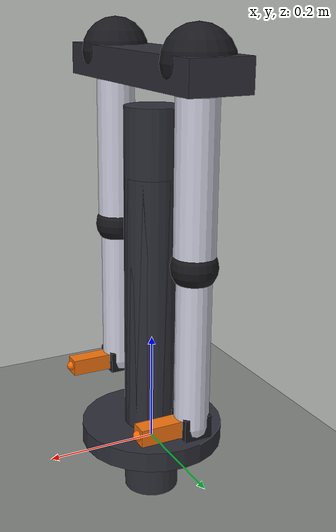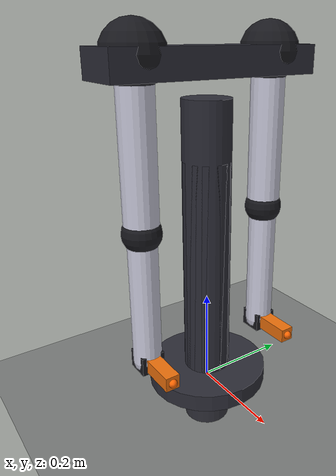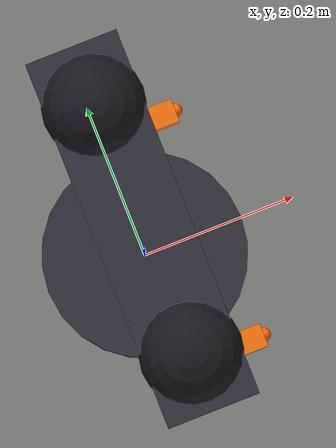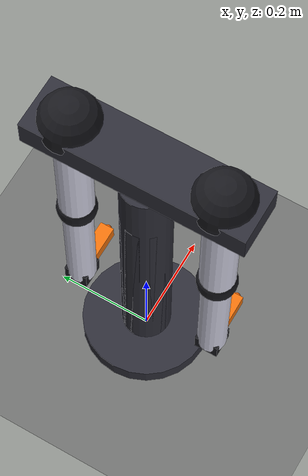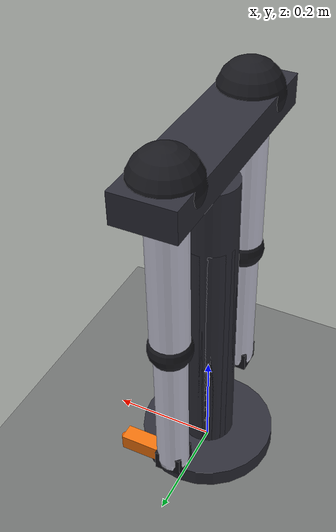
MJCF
<mujoco model="biasco_v2_bimanual_ros2">

  <compiler angle="degree" inertiafromgeom="true" />
  <option timestep="0.002" gravity="0 0 -9.81" />

  <default>
    <geom contype="0" conaffinity="0" />
    <joint limited="true" />
  </default>

  <asset>
    <material name="m_link" rgba="0.83 0.83 0.90 1.0" specular="0.65" shininess="0.45" reflectance="0.05" />
    <material name="m_joint" rgba="0.10 0.10 0.12 1.0" specular="0.85" shininess="0.70" />
    <material name="m_support" rgba="0.18 0.18 0.22 1.0" specular="0.55" shininess="0.35" reflectance="0.10" />
    <material name="m_ee" rgba="0.95 0.45 0.05 1.0" specular="0.50" shininess="0.30" />
    <material name="m_floor" rgba="0.20 0.20 0.22 1.0" specular="0.08" shininess="0.04" />
  </asset>

  <worldbody>
    <light name="key" directional="false" castshadow="true" pos="1.2 -1.0 3.5" dir="-0.5 0.4 -1" diffuse="0.85 0.85 0.82" specular="0.35 0.35 0.35" />
    <light name="fill" directional="true" castshadow="false" pos="-1.5 1.0 2.0" dir="0.6 -0.4 -0.8" diffuse="0.35 0.38 0.42" specular="0.05 0.05 0.05" />
    <light name="rim" directional="true" castshadow="false" pos="0 2.0 1.0" dir="0 -1 -0.3" diffuse="0.20 0.20 0.25" />

    <geom name="floor" type="plane" size="2 2 0.1" material="m_floor" contype="1" conaffinity="1" />

    <body name="base_link" pos="0 0 0">
      <geom name="base_plate" type="cylinder" size="0.13 0.018" pos="0 0 0.018" material="m_support" />
      <geom name="pole_lower" type="cylinder" size="0.05 0.30" pos="0 0 0.32" material="m_support" />

      <body name="trunk_link" pos="0 0 0.2">
        <joint name="trunk_rotate_joint" type="hinge" axis="0 0 1" range="-180 180" damping="20.0" frictionloss="2.0" armature="0.10" />
        <geom name="pole_upper" type="cylinder" size="0.05 0.30" pos="0 0 0" material="m_support" />
        <geom name="shoulder_yoke" type="box" size="0.055 0.22 0.028" pos="0 0 0.485" material="m_support" />

        <body name="l_shoulder_link" pos="0 0.15 0.5">
          <geom name="l_shoulder_housing" type="sphere" size="0.06" material="m_joint" />

          <body name="l_upper_arm_link" pos="0 0 0">
            <joint name="l_shoulder_abduct_joint" type="hinge" axis="1 0 0" range="-20 135" damping="12.0" frictionloss="1.5" armature="0.05" />
            <joint name="l_shoulder_flex_joint" type="hinge" axis="0 1 0" range="-60 150" damping="12.0" frictionloss="1.5" armature="0.05" />
            <joint name="l_shoulder_rot_joint" type="hinge" axis="0 0 1" range="-90 90" damping="8.0" frictionloss="1.0" armature="0.04" />
            <geom name="l_upper_arm" type="capsule" fromto="0 0 0  0 0 -0.32" size="0.035" material="m_link" />

            <body name="l_forearm_link" pos="0 0 -0.32">
              <joint name="l_elbow_flex_joint" type="hinge" axis="0 1 0" range="0 145" damping="6.0" frictionloss="0.8" armature="0.03" />
              <joint name="l_forearm_rot_joint" type="hinge" axis="0 0 1" range="-180 180" damping="4.0" frictionloss="0.5" armature="0.02" />
              <geom name="l_elbow_housing" type="sphere" size="0.04" material="m_joint" />
              <geom name="l_forearm" type="capsule" fromto="0 0 0  0 0 -0.28" size="0.03" material="m_link" />

              <body name="l_wrist_link" pos="0 0 -0.28">
                <joint name="l_wrist_flex_joint" type="hinge" axis="0 1 0" range="-90 90" damping="2.0" frictionloss="0.2" armature="0.01" />
                <geom name="l_wrist_housing" type="box" size="0.025 0.025 0.02" material="m_joint" />

                <body name="l_end_effector_link" pos="0 0 0">
                  <site name="l_ee_tip" type="sphere" size="0.009" pos="0.10 0 0" rgba="1.0 0.4 0.0 1" />
                  <geom name="l_ee_palm" type="box" size="0.05 0.015 0.015" pos="0.05 0 0" material="m_ee" />
                </body>
              </body>
            </body>
          </body>
        </body>

        <body name="r_shoulder_link" pos="0 -0.15 0.5">
          <geom name="r_shoulder_housing" type="sphere" size="0.06" material="m_joint" />

          <body name="r_upper_arm_link" pos="0 0 0">
            <joint name="r_shoulder_abduct_joint" type="hinge" axis="-1 0 0" range="-20 135" damping="12.0" frictionloss="1.5" armature="0.05" />
            <joint name="r_shoulder_flex_joint" type="hinge" axis="0 1 0" range="-60 150" damping="12.0" frictionloss="1.5" armature="0.05" />
            <joint name="r_shoulder_rot_joint" type="hinge" axis="0 0 1" range="-90 90" damping="8.0" frictionloss="1.0" armature="0.04" />
            <geom name="r_upper_arm" type="capsule" fromto="0 0 0  0 0 -0.32" size="0.035" material="m_link" />

            <body name="r_forearm_link" pos="0 0 -0.32">
              <joint name="r_elbow_flex_joint" type="hinge" axis="0 1 0" range="0 145" damping="6.0" frictionloss="0.8" armature="0.03" />
              <joint name="r_forearm_rot_joint" type="hinge" axis="0 0 1" range="-180 180" damping="4.0" frictionloss="0.5" armature="0.02" />
              <geom name="r_elbow_housing" type="sphere" size="0.04" material="m_joint" />
              <geom name="r_forearm" type="capsule" fromto="0 0 0  0 0 -0.28" size="0.03" material="m_link" />

              <body name="r_wrist_link" pos="0 0 -0.28">
                <joint name="r_wrist_flex_joint" type="hinge" axis="0 1 0" range="-90 90" damping="2.0" frictionloss="0.2" armature="0.01" />
                <geom name="r_wrist_housing" type="box" size="0.025 0.025 0.02" material="m_joint" />

                <body name="r_end_effector_link" pos="0 0 0">
                  <site name="r_ee_tip" type="sphere" size="0.009" pos="0.10 0 0" rgba="1.0 0.4 0.0 1" />
                  <geom name="r_ee_palm" type="box" size="0.05 0.015 0.015" pos="0.05 0 0" material="m_ee" />
                </body>
              </body>
            </body>
          </body>
        </body>

      </body>
    </body>

    <camera name="cam_front" pos="1.8 0 1.15" xyaxes="-1 0 0  0 0 1" fovy="50" />
    <camera name="cam_top" pos="0 0 2.8" xyaxes="1 0 0  0 1 0" fovy="60" />
    <camera name="cam_iso" pos="1.4 1.4 1.8" xyaxes="-0.707 0.707 0  -0.408 -0.408 0.816" fovy="45" />
  </worldbody>

  <actuator>
    <position name="trunk_rotate_joint" joint="trunk_rotate_joint" kp="1200" ctrlrange="-3.1416 3.1416" forcerange="-200 200" />

    <position name="l_shoulder_abduct_joint" joint="l_shoulder_abduct_joint" kp="800" ctrlrange="-0.349 2.356" forcerange="-120 120" />
    <position name="l_shoulder_flex_joint" joint="l_shoulder_flex_joint" kp="800" ctrlrange="-1.047 2.618" forcerange="-120 120" />
    <position name="l_shoulder_rot_joint" joint="l_shoulder_rot_joint" kp="600" ctrlrange="-1.571 1.571" forcerange="-80 80" />
    <position name="l_elbow_flex_joint" joint="l_elbow_flex_joint" kp="400" ctrlrange="0.000 2.531" forcerange="-60 60" />
    <position name="l_forearm_rot_joint" joint="l_forearm_rot_joint" kp="300" ctrlrange="-3.142 3.142" forcerange="-40 40" />
    <position name="l_wrist_flex_joint" joint="l_wrist_flex_joint" kp="200" ctrlrange="-1.571 1.571" forcerange="-20 20" />

    <position name="r_shoulder_abduct_joint" joint="r_shoulder_abduct_joint" kp="800" ctrlrange="-0.349 2.356" forcerange="-120 120" />
    <position name="r_shoulder_flex_joint" joint="r_shoulder_flex_joint" kp="800" ctrlrange="-1.047 2.618" forcerange="-120 120" />
    <position name="r_shoulder_rot_joint" joint="r_shoulder_rot_joint" kp="600" ctrlrange="-1.571 1.571" forcerange="-80 80" />
    <position name="r_elbow_flex_joint" joint="r_elbow_flex_joint" kp="400" ctrlrange="0.000 2.531" forcerange="-60 60" />
    <position name="r_forearm_rot_joint" joint="r_forearm_rot_joint" kp="300" ctrlrange="-3.142 3.142" forcerange="-40 40" />
    <position name="r_wrist_flex_joint" joint="r_wrist_flex_joint" kp="200" ctrlrange="-1.571 1.571" forcerange="-20 20" />
  </actuator>

  <sensor>
    <framepos  name="l_ee_pos"  objtype="site" objname="l_ee_tip" />
    <framequat name="l_ee_quat" objtype="site" objname="l_ee_tip" />
    <framepos  name="r_ee_pos"  objtype="site" objname="r_ee_tip" />
    <framequat name="r_ee_quat" objtype="site" objname="r_ee_tip" />
  </sensor>

  <keyframe>
    <key name="home" qpos="0 0 30 0 90 0 0 0 30 0 90 0 0" />
  </keyframe>

</mujoco>
